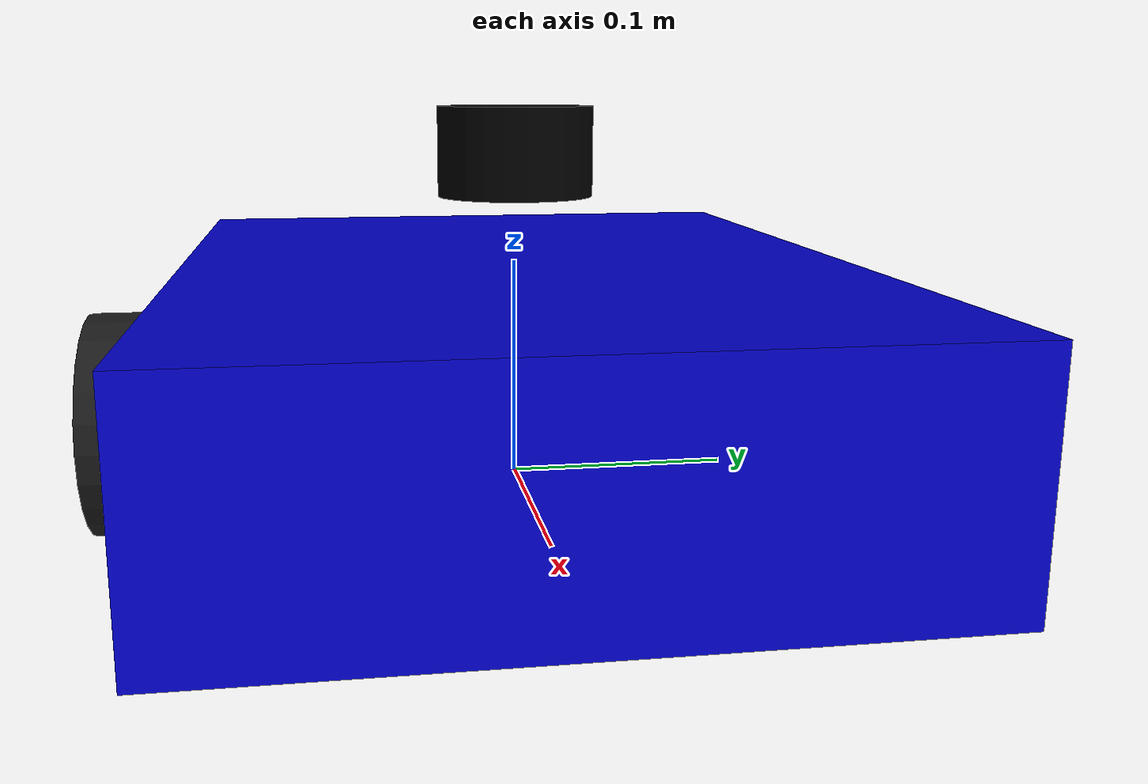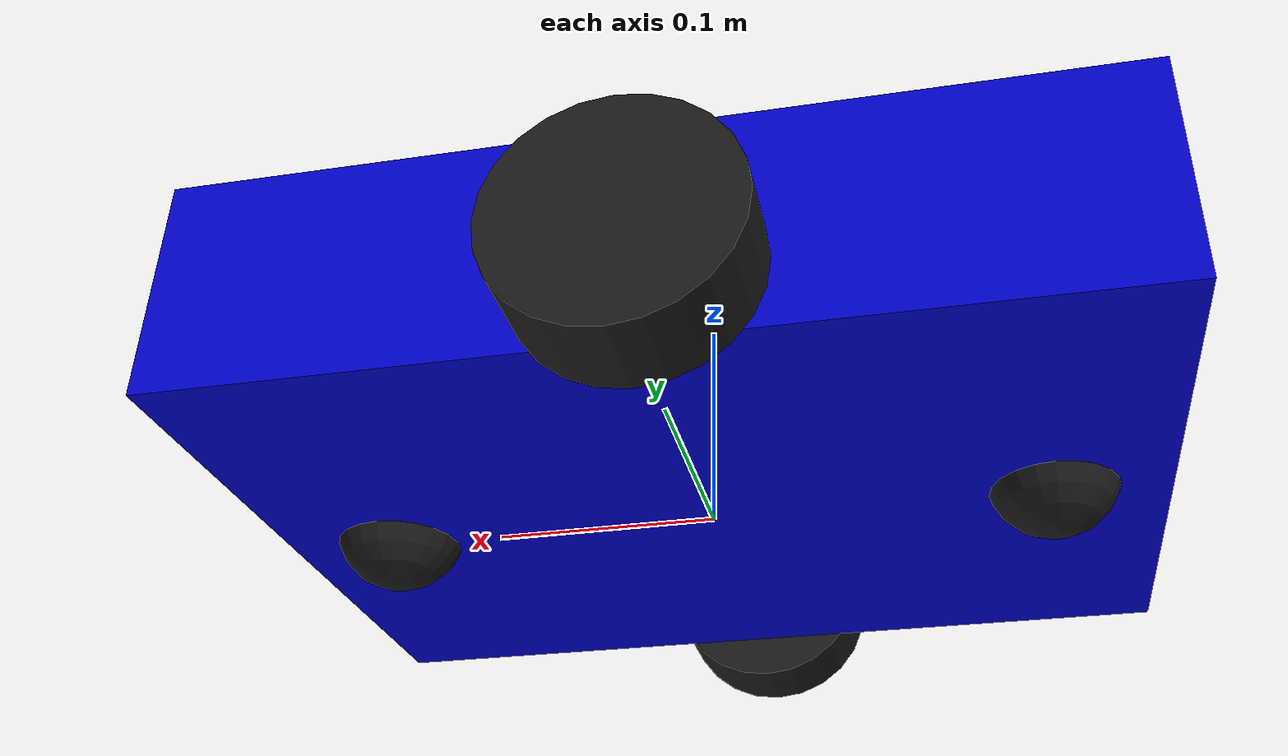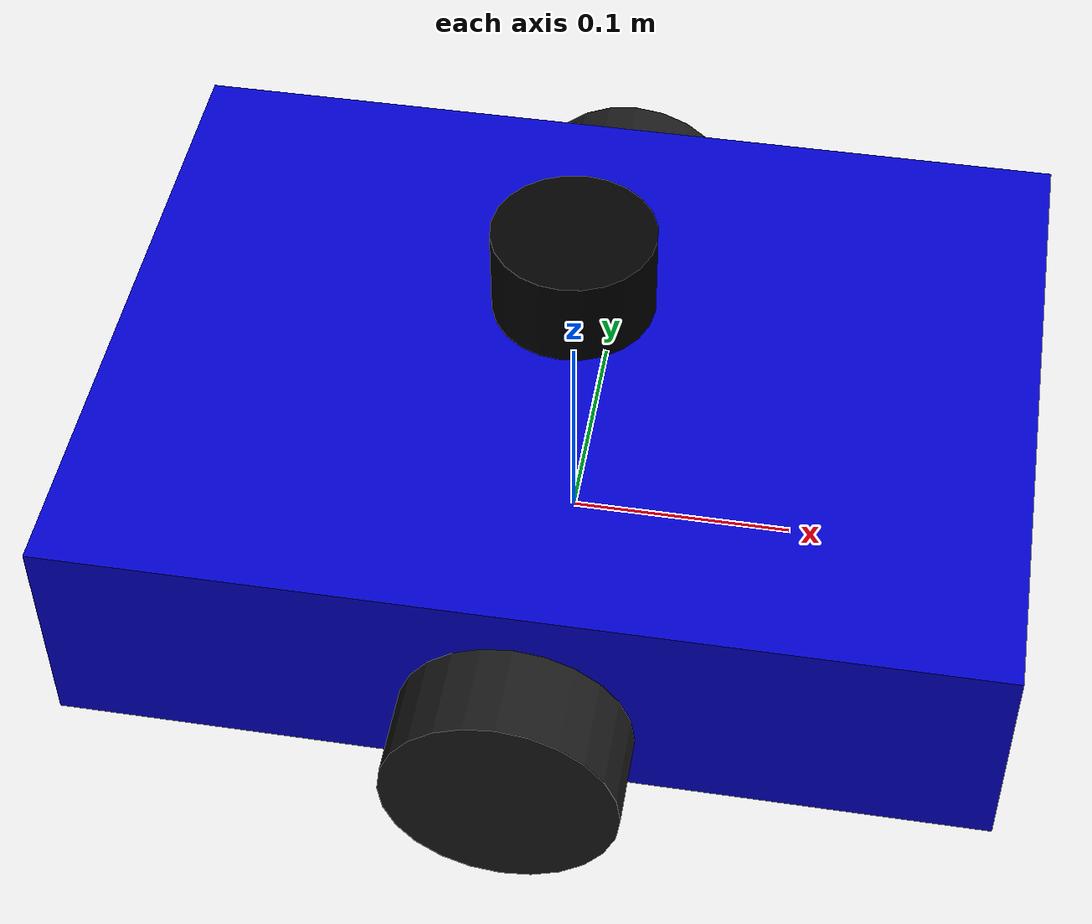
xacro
<?xml version="1.0"?>
<robot xmlns:xacro="http://www.ros.org/wiki/xacro" name="amr_robot">

    <gazebo>
        <plugin filename="gz-sim-sensors-system" name="gz::sim::systems::Sensors">
            <render_engine>ogre2</render_engine>
        </plugin>
    </gazebo>

    <xacro:include filename="inertial_macros.xacro" />

    <xacro:property name="chassis_length" value="0.4"/>
    <xacro:property name="chassis_width" value="0.3"/>
    <xacro:property name="chassis_height" value="0.1"/>
    <xacro:property name="wheel_radius" value="0.05"/>
    <xacro:property name="wheel_thickness" value="0.04"/>

    <link name="base_link"></link>

    <link name="chassis">
        <visual>
            <geometry><box size="${chassis_length} ${chassis_width} ${chassis_height}"/></geometry>
            <material name="blue"><color rgba="0.0 0.0 0.8 1.0"/></material>
        </visual>
        <collision>
            <geometry><box size="${chassis_length} ${chassis_width} ${chassis_height}"/></geometry>
        </collision>
        <xacro:inertial_box mass="5.0" x="${chassis_length}" y="${chassis_width}" z="${chassis_height}">
            <origin xyz="0 0 0" rpy="0 0 0"/>
        </xacro:inertial_box>
    </link>
    <joint name="base_to_chassis" type="fixed">
        <parent link="base_link"/>
        <child link="chassis"/>
        <origin xyz="0 0 0.05" rpy="0 0 0"/>
    </joint>

    <xacro:macro name="wheel" params="prefix y_reflect">
        <link name="${prefix}_wheel">
            <visual>
                <origin xyz="0 0 0" rpy="${pi/2} 0 0"/>
                <geometry><cylinder radius="${wheel_radius}" length="${wheel_thickness}"/></geometry>
                <material name="black"><color rgba="0.1 0.1 0.1 1.0"/></material>
            </visual>
            <collision>
                <origin xyz="0 0 0" rpy="${pi/2} 0 0"/>
                <geometry><cylinder radius="${wheel_radius}" length="${wheel_thickness}"/></geometry>
            </collision>
            <xacro:inertial_cylinder mass="0.5" length="${wheel_thickness}" radius="${wheel_radius}">
                <origin xyz="0 0 0" rpy="${pi/2} 0 0"/>
            </xacro:inertial_cylinder>
        </link>
        <joint name="${prefix}_wheel_joint" type="continuous">
            <parent link="chassis"/>
            <child link="${prefix}_wheel"/>
            <origin xyz="0 ${y_reflect * (chassis_width/2 + wheel_thickness/2)} -0.02" rpy="0 0 0"/>
            <axis xyz="0 1 0"/>
        </joint>
    </xacro:macro>

    <xacro:wheel prefix="left" y_reflect="1" />
    <xacro:wheel prefix="right" y_reflect="-1" />

    <xacro:macro name="caster_wheel" params="prefix x_offset">
        <link name="${prefix}_caster">
            <visual>
                <geometry><sphere radius="0.03"/></geometry>
                <material name="black"/>
            </visual>
            <collision>
                <geometry><sphere radius="0.03"/></geometry>
            </collision>
            <xacro:inertial_box mass="0.1" x="0.06" y="0.06" z="0.06">
                <origin xyz="0 0 0" rpy="0 0 0"/>
            </xacro:inertial_box>
        </link>
        <gazebo reference="${prefix}_caster">
            <mu1>0.001</mu1>
            <mu2>0.001</mu2>
        </gazebo>
        <joint name="${prefix}_caster_joint" type="fixed">
            <parent link="chassis"/>
            <child link="${prefix}_caster"/>
            <origin xyz="${x_offset} 0 -0.04" rpy="0 0 0"/>
        </joint>
    </xacro:macro>

    <xacro:caster_wheel prefix="front" x_offset="0.15" />
    <xacro:caster_wheel prefix="rear" x_offset="-0.15" />

    <gazebo>
        <plugin filename="gz-sim-diff-drive-system" name="gz::sim::systems::DiffDrive">
            <left_joint>left_wheel_joint</left_joint>
            <right_joint>right_wheel_joint</right_joint>
            <wheel_separation>0.34</wheel_separation>
            <wheel_radius>0.05</wheel_radius>
            <odom_publish_frequency>30</odom_publish_frequency>
            <topic>cmd_vel</topic>
            <odom_topic>/odom</odom_topic>
        	<tf_topic>/tf</tf_topic>
        	<frame_id>odom</frame_id>
        	<child_frame_id>base_link</child_frame_id>
        </plugin>
    </gazebo>

    <xacro:include filename="lidar.xacro" />

    <gazebo>
        <plugin filename="gz-sim-joint-state-publisher-system" name="gz::sim::systems::JointStatePublisher">
            <topic>joint_states</topic>
            <joint_name>left_wheel_joint</joint_name>
            <joint_name>right_wheel_joint</joint_name>
        </plugin>
    </gazebo>

    <gazebo reference="left_wheel">
        <mu1 value="100.0"/>
        <mu2 value="100.0"/>
        <kp value="1000000.0" />
        <kd value="1.0" />
    </gazebo>

    <gazebo reference="right_wheel">
        <mu1 value="100.0"/>
        <mu2 value="100.0"/>
        <kp value="1000000.0" />
        <kd value="1.0" />
    </gazebo>

</robot>

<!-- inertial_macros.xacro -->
<robot xmlns:xacro="http://www.ros.org/wiki/xacro">

    <xacro:macro name="inertial_cylinder" params="mass length radius *origin">
        <inertial>
            <xacro:insert_block name="origin"/>
            <mass value="${mass}" />
            <inertia ixx="${(1/12) * mass * (3*radius*radius + length*length)}" ixy="0.0" ixz="0.0"
                     iyy="${(1/12) * mass * (3*radius*radius + length*length)}" iyz="0.0"
                     izz="${(1/2) * mass * (radius*radius)}" />
        </inertial>
    </xacro:macro>

    <xacro:macro name="inertial_box" params="mass x y z *origin">
        <inertial>
            <xacro:insert_block name="origin"/>
            <mass value="${mass}" />
            <inertia ixx="${(1/12) * mass * (y*y+z*z)}" ixy="0.0" ixz="0.0"
                     iyy="${(1/12) * mass * (x*x+z*z)}" iyz="0.0"
                     izz="${(1/12) * mass * (x*x+y*y)}" />
        </inertial>
    </xacro:macro>

</robot>

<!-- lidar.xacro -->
<robot xmlns:xacro="http://www.ros.org/wiki/xacro">

    <joint name="laser_joint" type="fixed">
        <parent link="base_link"/>
        <child link="laser_frame"/>
        <origin xyz="0 0 0.15" rpy="0 0 0"/>
    </joint>

    <link name="laser_frame">
        <visual>
            <geometry>
                <cylinder radius="0.035" length="0.04"/>
            </geometry>
            <material name="black">
                <color rgba="0 0 0 1"/>
            </material>
        </visual>
        <collision>
            <geometry>
                <cylinder radius="0.035" length="0.04"/>
            </geometry>
        </collision>
        <xacro:inertial_cylinder mass="0.17" length="0.04" radius="0.035">
            <origin xyz="0 0 0" rpy="0 0 0"/>
        </xacro:inertial_cylinder>
    </link>

    <gazebo reference="laser_frame">
        <material>Gazebo/Black</material>
        <sensor name="laser" type="gpu_lidar">
            <gz_frame_id>laser_frame</gz_frame_id>
            <pose>0 0 0 0 0 0</pose>
            <topic>/scan</topic>
            <update_rate>30</update_rate>
            <ray>
                <scan>
                    <horizontal>
                        <samples>360</samples>
                        <resolution>1</resolution>
                        <min_angle>-3.14159</min_angle>
                        <max_angle>3.14159</max_angle>
                    </horizontal>
                </scan>
                <range>
                    <min>0.15</min>
                    <max>12.0</max>
                    <resolution>0.01</resolution>
                </range>
            </ray>
            <always_on>true</always_on>
            <visualize>true</visualize> </sensor>
    </gazebo>

</robot>
